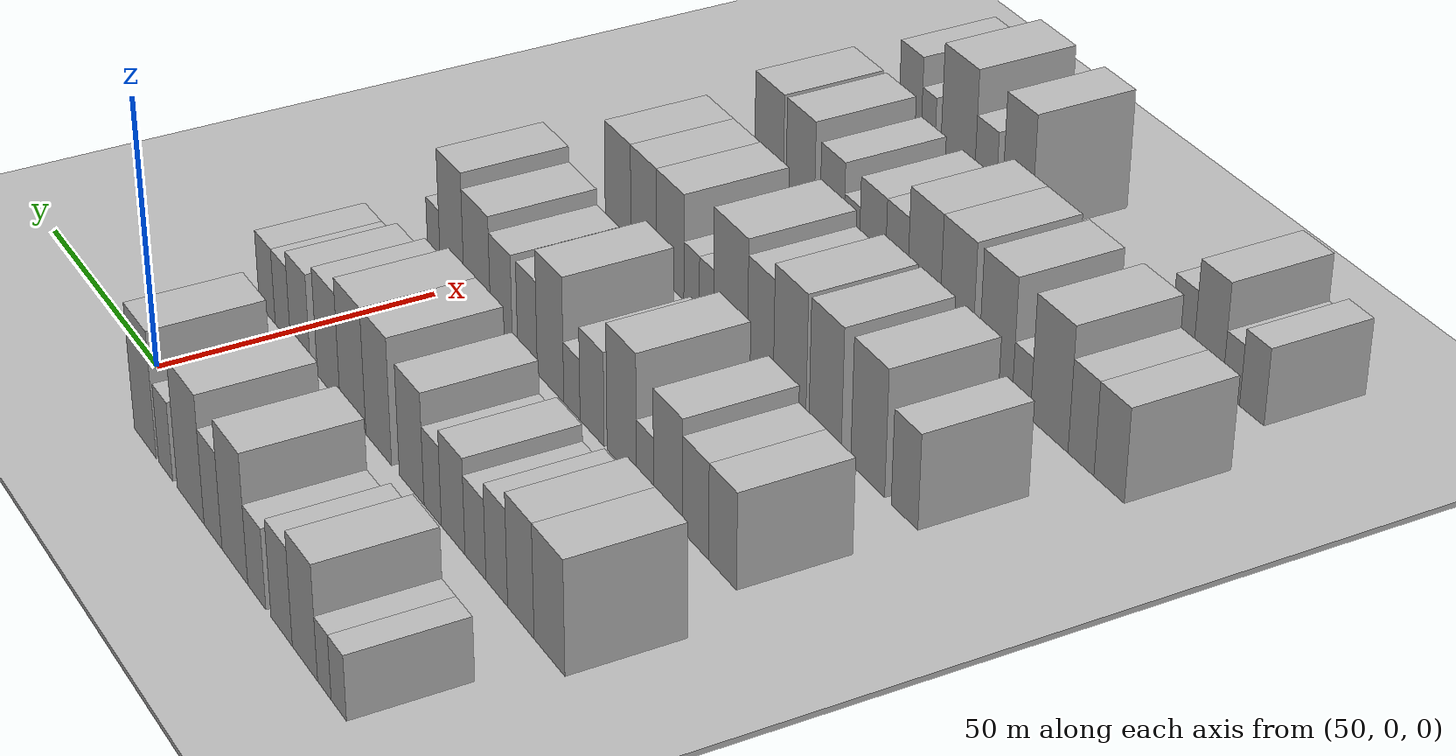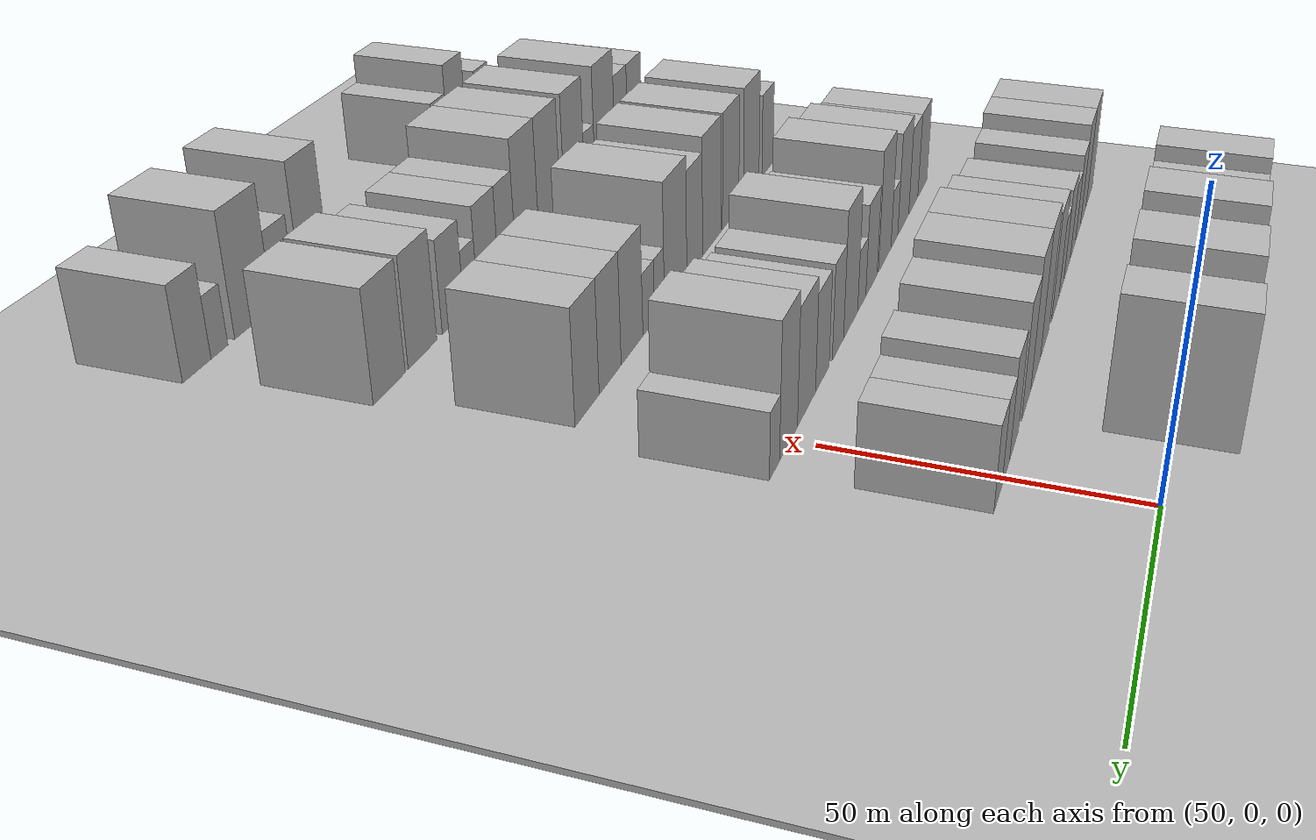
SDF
<sdf version="1.6">
 <world name="default">
  <include><name>ground_plane_1</name><uri>model://HANNAS_ground_plane</uri></include>
  <include>
   <name>ground_plane_2</name>
   <uri>model://HANNAS_ground_plane</uri>
   <pose>100 0 0  0 0 0</pose>
  </include>
  <model name="building_47">
   <static>1</static>
   <pose>50.0000 -99.2370 0 0.000000 0.000000 0.000000</pose>
   <link name="link">
    <pose>0 0 6.00 0 0 0</pose>
    <collision name="collision"><geometry><box><size>20.0000 5.5091 12.0000</size></box></geometry></collision>
    <visual name="visual">
     <cast_shadows>0</cast_shadows>
     <geometry><box><size>20.0000 5.5091 12.0000</size></box></geometry>
     <material>
      <script>
       <uri>model://HANNAS_wall/materials/scripts</uri>
       <uri>model://HANNAS_wall/materials/textures</uri>
       <name>vrc/HANNAS_wall</name>
      </script>
     </material>
    </visual>
   </link>
  </model>
  <model name="building_48">
   <static>1</static>
   <pose>50.0000 -94.0040 0 0.000000 0.000000 0.000000</pose>
   <link name="link">
    <pose>0 0 6.00 0 0 0</pose>
    <collision name="collision"><geometry><box><size>20.0000 4.9569 12.0000</size></box></geometry></collision>
    <visual name="visual">
     <cast_shadows>0</cast_shadows>
     <geometry><box><size>20.0000 4.9569 12.0000</size></box></geometry>
     <material>
      <script>
       <uri>model://HANNAS_wall/materials/scripts</uri>
       <uri>model://HANNAS_wall/materials/textures</uri>
       <name>vrc/HANNAS_wall</name>
      </script>
     </material>
    </visual>
   </link>
  </model>
  <model name="building_49">
   <static>1</static>
   <pose>50.0000 -86.7960 0 0.000000 0.000000 0.000000</pose>
   <link name="link">
    <pose>0 0 10.50 0 0 0</pose>
    <collision name="collision"><geometry><box><size>20.0000 9.4590 21.0000</size></box></geometry></collision>
    <visual name="visual">
     <cast_shadows>0</cast_shadows>
     <geometry><box><size>20.0000 9.4590 21.0000</size></box></geometry>
     <material>
      <script>
       <uri>model://HANNAS_wall/materials/scripts</uri>
       <uri>model://HANNAS_wall/materials/textures</uri>
       <name>vrc/HANNAS_wall</name>
      </script>
     </material>
    </visual>
   </link>
  </model>
  <model name="building_50">
   <static>1</static>
   <pose>50.0000 -77.9590 0 0.000000 0.000000 0.000000</pose>
   <link name="link">
    <pose>0 0 9.00 0 0 0</pose>
    <collision name="collision"><geometry><box><size>20.0000 8.2149 18.0000</size></box></geometry></collision>
    <visual name="visual">
     <cast_shadows>0</cast_shadows>
     <geometry><box><size>20.0000 8.2149 18.0000</size></box></geometry>
     <material>
      <script>
       <uri>model://HANNAS_wall/materials/scripts</uri>
       <uri>model://HANNAS_wall/materials/textures</uri>
       <name>vrc/HANNAS_wall</name>
      </script>
     </material>
    </visual>
   </link>
  </model>
  <model name="building_51">
   <static>1</static>
   <pose>50.0000 -68.3012 0 0.000000 0.000000 0.000000</pose>
   <link name="link">
    <pose>0 0 7.50 0 0 0</pose>
    <collision name="collision"><geometry><box><size>20.0000 7.1007 15.0000</size></box></geometry></collision>
    <visual name="visual">
     <cast_shadows>0</cast_shadows>
     <geometry><box><size>20.0000 7.1007 15.0000</size></box></geometry>
     <material>
      <script>
       <uri>model://HANNAS_wall/materials/scripts</uri>
       <uri>model://HANNAS_wall/materials/textures</uri>
       <name>vrc/HANNAS_wall</name>
      </script>
     </material>
    </visual>
   </link>
  </model>
  <model name="building_52">
   <static>1</static>
   <pose>50.0000 -59.5511 0 0.000000 0.000000 0.000000</pose>
   <link name="link">
    <pose>0 0 12.00 0 0 0</pose>
    <collision name="collision"><geometry><box><size>20.0000 10.3995 24.0000</size></box></geometry></collision>
    <visual name="visual">
     <cast_shadows>0</cast_shadows>
     <geometry><box><size>20.0000 10.3995 24.0000</size></box></geometry>
     <material>
      <script>
       <uri>model://HANNAS_wall/materials/scripts</uri>
       <uri>model://HANNAS_wall/materials/textures</uri>
       <name>vrc/HANNAS_wall</name>
      </script>
     </material>
    </visual>
   </link>
  </model>
  <model name="building_53">
   <static>1</static>
   <pose>50.0000 -50.6286 0 0.000000 0.000000 0.000000</pose>
   <link name="link">
    <pose>0 0 9.00 0 0 0</pose>
    <collision name="collision"><geometry><box><size>20.0000 7.4455 18.0000</size></box></geometry></collision>
    <visual name="visual">
     <cast_shadows>0</cast_shadows>
     <geometry><box><size>20.0000 7.4455 18.0000</size></box></geometry>
     <material>
      <script>
       <uri>model://HANNAS_wall/materials/scripts</uri>
       <uri>model://HANNAS_wall/materials/textures</uri>
       <name>vrc/HANNAS_wall</name>
      </script>
     </material>
    </visual>
   </link>
  </model>
  <model name="building_54">
   <static>1</static>
   <pose>50.0000 -41.2096 0 0.000000 0.000000 0.000000</pose>
   <link name="link">
    <pose>0 0 12.00 0 0 0</pose>
    <collision name="collision"><geometry><box><size>20.0000 11.3924 24.0000</size></box></geometry></collision>
    <visual name="visual">
     <cast_shadows>0</cast_shadows>
     <geometry><box><size>20.0000 11.3924 24.0000</size></box></geometry>
     <material>
      <script>
       <uri>model://HANNAS_wall/materials/scripts</uri>
       <uri>model://HANNAS_wall/materials/textures</uri>
       <name>vrc/HANNAS_wall</name>
      </script>
     </material>
    </visual>
   </link>
  </model>
  <model name="building_55">
   <static>1</static>
   <pose>50.0000 -30.4210 0 0.000000 0.000000 0.000000</pose>
   <link name="link">
    <pose>0 0 7.50 0 0 0</pose>
    <collision name="collision"><geometry><box><size>20.0000 6.1848 15.0000</size></box></geometry></collision>
    <visual name="visual">
     <cast_shadows>0</cast_shadows>
     <geometry><box><size>20.0000 6.1848 15.0000</size></box></geometry>
     <material>
      <script>
       <uri>model://HANNAS_wall/materials/scripts</uri>
       <uri>model://HANNAS_wall/materials/textures</uri>
       <name>vrc/HANNAS_wall</name>
      </script>
     </material>
    </visual>
   </link>
  </model>
  <model name="building_56">
   <static>1</static>
   <pose>50.0000 -21.4422 0 0.000000 0.000000 0.000000</pose>
   <link name="link">
    <pose>0 0 12.00 0 0 0</pose>
    <collision name="collision"><geometry><box><size>20.0000 9.7727 24.0000</size></box></geometry></collision>
    <visual name="visual">
     <cast_shadows>0</cast_shadows>
     <geometry><box><size>20.0000 9.7727 24.0000</size></box></geometry>
     <material>
      <script>
       <uri>model://HANNAS_wall/materials/scripts</uri>
       <uri>model://HANNAS_wall/materials/textures</uri>
       <name>vrc/HANNAS_wall</name>
      </script>
     </material>
    </visual>
   </link>
  </model>
  <model name="building_164">
   <static>1</static>
   <pose>82.0000 -101.8453 0 0.000000 0.000000 0.000000</pose>
   <link name="link">
    <pose>0 0 10.50 0 0 0</pose>
    <collision name="collision"><geometry><box><size>20.0000 10.2073 21.0000</size></box></geometry></collision>
    <visual name="visual">
     <cast_shadows>0</cast_shadows>
     <geometry><box><size>20.0000 10.2073 21.0000</size></box></geometry>
     <material>
      <script>
       <uri>model://HANNAS_wall/materials/scripts</uri>
       <uri>model://HANNAS_wall/materials/textures</uri>
       <name>vrc/HANNAS_wall</name>
      </script>
     </material>
    </visual>
   </link>
  </model>
  <model name="building_165">
   <static>1</static>
   <pose>82.0000 -92.2437 0 0.000000 0.000000 0.000000</pose>
   <link name="link">
    <pose>0 0 10.50 0 0 0</pose>
    <collision name="collision"><geometry><box><size>20.0000 8.9959 21.0000</size></box></geometry></collision>
    <visual name="visual">
     <cast_shadows>0</cast_shadows>
     <geometry><box><size>20.0000 8.9959 21.0000</size></box></geometry>
     <material>
      <script>
       <uri>model://HANNAS_wall/materials/scripts</uri>
       <uri>model://HANNAS_wall/materials/textures</uri>
       <name>vrc/HANNAS_wall</name>
      </script>
     </material>
    </visual>
   </link>
  </model>
  <model name="building_166">
   <static>1</static>
   <pose>82.0000 -83.9623 0 0.000000 0.000000 0.000000</pose>
   <link name="link">
    <pose>0 0 9.00 0 0 0</pose>
    <collision name="collision"><geometry><box><size>20.0000 7.5668 18.0000</size></box></geometry></collision>
    <visual name="visual">
     <cast_shadows>0</cast_shadows>
     <geometry><box><size>20.0000 7.5668 18.0000</size></box></geometry>
     <material>
      <script>
       <uri>model://HANNAS_wall/materials/scripts</uri>
       <uri>model://HANNAS_wall/materials/textures</uri>
       <name>vrc/HANNAS_wall</name>
      </script>
     </material>
    </visual>
   </link>
  </model>
  <model name="building_167">
   <static>1</static>
   <pose>82.0000 -76.4705 0 0.000000 0.000000 0.000000</pose>
   <link name="link">
    <pose>0 0 7.50 0 0 0</pose>
    <collision name="collision"><geometry><box><size>20.0000 7.4170 15.0000</size></box></geometry></collision>
    <visual name="visual">
     <cast_shadows>0</cast_shadows>
     <geometry><box><size>20.0000 7.4170 15.0000</size></box></geometry>
     <material>
      <script>
       <uri>model://HANNAS_wall/materials/scripts</uri>
       <uri>model://HANNAS_wall/materials/textures</uri>
       <name>vrc/HANNAS_wall</name>
      </script>
     </material>
    </visual>
   </link>
  </model>
  <model name="building_168">
   <static>1</static>
   <pose>82.0000 -68.4474 0 0.000000 0.000000 0.000000</pose>
   <link name="link">
    <pose>0 0 9.00 0 0 0</pose>
    <collision name="collision"><geometry><box><size>20.0000 8.6291 18.0000</size></box></geometry></collision>
    <visual name="visual">
     <cast_shadows>0</cast_shadows>
     <geometry><box><size>20.0000 8.6291 18.0000</size></box></geometry>
     <material>
      <script>
       <uri>model://HANNAS_wall/materials/scripts</uri>
       <uri>model://HANNAS_wall/materials/textures</uri>
       <name>vrc/HANNAS_wall</name>
      </script>
     </material>
    </visual>
   </link>
  </model>
  <model name="building_169">
   <static>1</static>
   <pose>82.0000 -60.9271 0 0.000000 0.000000 0.000000</pose>
   <link name="link">
    <pose>0 0 7.50 0 0 0</pose>
    <collision name="collision"><geometry><box><size>20.0000 6.4116 15.0000</size></box></geometry></collision>
    <visual name="visual">
     <cast_shadows>0</cast_shadows>
     <geometry><box><size>20.0000 6.4116 15.0000</size></box></geometry>
     <material>
      <script>
       <uri>model://HANNAS_wall/materials/scripts</uri>
       <uri>model://HANNAS_wall/materials/textures</uri>
       <name>vrc/HANNAS_wall</name>
      </script>
     </material>
    </visual>
   </link>
  </model>
  <model name="building_170">
   <static>1</static>
   <pose>82.0000 -53.0130 0 0.000000 0.000000 0.000000</pose>
   <link name="link">
    <pose>0 0 10.50 0 0 0</pose>
    <collision name="collision"><geometry><box><size>20.0000 9.4164 21.0000</size></box></geometry></collision>
    <visual name="visual">
     <cast_shadows>0</cast_shadows>
     <geometry><box><size>20.0000 9.4164 21.0000</size></box></geometry>
     <material>
      <script>
       <uri>model://HANNAS_wall/materials/scripts</uri>
       <uri>model://HANNAS_wall/materials/textures</uri>
       <name>vrc/HANNAS_wall</name>
      </script>
     </material>
    </visual>
   </link>
  </model>
  <model name="building_171">
   <static>1</static>
   <pose>82.0000 -40.2784 0 0.000000 0.000000 0.000000</pose>
   <link name="link">
    <pose>0 0 12.00 0 0 0</pose>
    <collision name="collision"><geometry><box><size>20.0000 10.0529 24.0000</size></box></geometry></collision>
    <visual name="visual">
     <cast_shadows>0</cast_shadows>
     <geometry><box><size>20.0000 10.0529 24.0000</size></box></geometry>
     <material>
      <script>
       <uri>model://HANNAS_wall/materials/scripts</uri>
       <uri>model://HANNAS_wall/materials/textures</uri>
       <name>vrc/HANNAS_wall</name>
      </script>
     </material>
    </visual>
   </link>
  </model>
  <model name="building_172">
   <static>1</static>
   <pose>82.0000 -30.0319 0 0.000000 0.000000 0.000000</pose>
   <link name="link">
    <pose>0 0 12.00 0 0 0</pose>
    <collision name="collision"><geometry><box><size>20.0000 10.4400 24.0000</size></box></geometry></collision>
    <visual name="visual">
     <cast_shadows>0</cast_shadows>
     <geometry><box><size>20.0000 10.4400 24.0000</size></box></geometry>
     <material>
      <script>
       <uri>model://HANNAS_wall/materials/scripts</uri>
       <uri>model://HANNAS_wall/materials/textures</uri>
       <name>vrc/HANNAS_wall</name>
      </script>
     </material>
    </visual>
   </link>
  </model>
  <model name="building_173">
   <static>1</static>
   <pose>82.0000 -20.1255 0 0.000000 0.000000 0.000000</pose>
   <link name="link">
    <pose>0 0 10.50 0 0 0</pose>
    <collision name="collision"><geometry><box><size>20.0000 9.3729 21.0000</size></box></geometry></collision>
    <visual name="visual">
     <cast_shadows>0</cast_shadows>
     <geometry><box><size>20.0000 9.3729 21.0000</size></box></geometry>
     <material>
      <script>
       <uri>model://HANNAS_wall/materials/scripts</uri>
       <uri>model://HANNAS_wall/materials/textures</uri>
       <name>vrc/HANNAS_wall</name>
      </script>
     </material>
    </visual>
   </link>
  </model>
  <model name="building_174">
   <static>1</static>
   <pose>82.0000 -8.2024 0 0.000000 0.000000 0.000000</pose>
   <link name="link">
    <pose>0 0 9.00 0 0 0</pose>
    <collision name="collision"><geometry><box><size>20.0000 8.4732 18.0000</size></box></geometry></collision>
    <visual name="visual">
     <cast_shadows>0</cast_shadows>
     <geometry><box><size>20.0000 8.4732 18.0000</size></box></geometry>
     <material>
      <script>
       <uri>model://HANNAS_wall/materials/scripts</uri>
       <uri>model://HANNAS_wall/materials/textures</uri>
       <name>vrc/HANNAS_wall</name>
      </script>
     </material>
    </visual>
   </link>
  </model>
  <model name="building_175">
   <static>1</static>
   <pose>82.0000 -0.6517 0 0.000000 0.000000 0.000000</pose>
   <link name="link">
    <pose>0 0 7.50 0 0 0</pose>
    <collision name="collision"><geometry><box><size>20.0000 6.6282 15.0000</size></box></geometry></collision>
    <visual name="visual">
     <cast_shadows>0</cast_shadows>
     <geometry><box><size>20.0000 6.6282 15.0000</size></box></geometry>
     <material>
      <script>
       <uri>model://HANNAS_wall/materials/scripts</uri>
       <uri>model://HANNAS_wall/materials/textures</uri>
       <name>vrc/HANNAS_wall</name>
      </script>
     </material>
    </visual>
   </link>
  </model>
  <model name="building_176">
   <static>1</static>
   <pose>82.0000 6.1698 0 0.000000 0.000000 0.000000</pose>
   <link name="link">
    <pose>0 0 7.50 0 0 0</pose>
    <collision name="collision"><geometry><box><size>20.0000 7.0147 15.0000</size></box></geometry></collision>
    <visual name="visual">
     <cast_shadows>0</cast_shadows>
     <geometry><box><size>20.0000 7.0147 15.0000</size></box></geometry>
     <material>
      <script>
       <uri>model://HANNAS_wall/materials/scripts</uri>
       <uri>model://HANNAS_wall/materials/textures</uri>
       <name>vrc/HANNAS_wall</name>
      </script>
     </material>
    </visual>
   </link>
  </model>
  <model name="building_283">
   <static>1</static>
   <pose>114.0000 -95.3579 0 0.000000 0.000000 0.000000</pose>
   <link name="link">
    <pose>0 0 9.00 0 0 0</pose>
    <collision name="collision"><geometry><box><size>20.0000 8.8075 18.0000</size></box></geometry></collision>
    <visual name="visual">
     <cast_shadows>0</cast_shadows>
     <geometry><box><size>20.0000 8.8075 18.0000</size></box></geometry>
     <material>
      <script>
       <uri>model://HANNAS_wall/materials/scripts</uri>
       <uri>model://HANNAS_wall/materials/textures</uri>
       <name>vrc/HANNAS_wall</name>
      </script>
     </material>
    </visual>
   </link>
  </model>
  <model name="building_284">
   <static>1</static>
   <pose>114.0000 -86.7526 0 0.000000 0.000000 0.000000</pose>
   <link name="link">
    <pose>0 0 9.00 0 0 0</pose>
    <collision name="collision"><geometry><box><size>20.0000 8.4030 18.0000</size></box></geometry></collision>
    <visual name="visual">
     <cast_shadows>0</cast_shadows>
     <geometry><box><size>20.0000 8.4030 18.0000</size></box></geometry>
     <material>
      <script>
       <uri>model://HANNAS_wall/materials/scripts</uri>
       <uri>model://HANNAS_wall/materials/textures</uri>
       <name>vrc/HANNAS_wall</name>
      </script>
     </material>
    </visual>
   </link>
  </model>
  <model name="building_285">
   <static>1</static>
   <pose>114.0000 -77.7031 0 0.000000 0.000000 0.000000</pose>
   <link name="link">
    <pose>0 0 10.50 0 0 0</pose>
    <collision name="collision"><geometry><box><size>20.0000 9.6959 21.0000</size></box></geometry></collision>
    <visual name="visual">
     <cast_shadows>0</cast_shadows>
     <geometry><box><size>20.0000 9.6959 21.0000</size></box></geometry>
     <material>
      <script>
       <uri>model://HANNAS_wall/materials/scripts</uri>
       <uri>model://HANNAS_wall/materials/textures</uri>
       <name>vrc/HANNAS_wall</name>
      </script>
     </material>
    </visual>
   </link>
  </model>
  <model name="building_286">
   <static>1</static>
   <pose>114.0000 -69.9713 0 0.000000 0.000000 0.000000</pose>
   <link name="link">
    <pose>0 0 6.00 0 0 0</pose>
    <collision name="collision"><geometry><box><size>20.0000 5.7677 12.0000</size></box></geometry></collision>
    <visual name="visual">
     <cast_shadows>0</cast_shadows>
     <geometry><box><size>20.0000 5.7677 12.0000</size></box></geometry>
     <material>
      <script>
       <uri>model://HANNAS_wall/materials/scripts</uri>
       <uri>model://HANNAS_wall/materials/textures</uri>
       <name>vrc/HANNAS_wall</name>
      </script>
     </material>
    </visual>
   </link>
  </model>
  <model name="building_287">
   <static>1</static>
   <pose>114.0000 -62.0086 0 0.000000 0.000000 0.000000</pose>
   <link name="link">
    <pose>0 0 12.00 0 0 0</pose>
    <collision name="collision"><geometry><box><size>20.0000 10.1578 24.0000</size></box></geometry></collision>
    <visual name="visual">
     <cast_shadows>0</cast_shadows>
     <geometry><box><size>20.0000 10.1578 24.0000</size></box></geometry>
     <material>
      <script>
       <uri>model://HANNAS_wall/materials/scripts</uri>
       <uri>model://HANNAS_wall/materials/textures</uri>
       <name>vrc/HANNAS_wall</name>
      </script>
     </material>
    </visual>
   </link>
  </model>
  <model name="building_288">
   <static>1</static>
   <pose>114.0000 -51.6359 0 0.000000 0.000000 0.000000</pose>
   <link name="link">
    <pose>0 0 9.00 0 0 0</pose>
    <collision name="collision"><geometry><box><size>20.0000 8.5876 18.0000</size></box></geometry></collision>
    <visual name="visual">
     <cast_shadows>0</cast_shadows>
     <geometry><box><size>20.0000 8.5876 18.0000</size></box></geometry>
     <material>
      <script>
       <uri>model://HANNAS_wall/materials/scripts</uri>
       <uri>model://HANNAS_wall/materials/textures</uri>
       <name>vrc/HANNAS_wall</name>
      </script>
     </material>
    </visual>
   </link>
  </model>
  <model name="building_289">
   <static>1</static>
   <pose>114.0000 -44.3966 0 0.000000 0.000000 0.000000</pose>
   <link name="link">
    <pose>0 0 6.00 0 0 0</pose>
    <collision name="collision"><geometry><box><size>20.0000 5.8909 12.0000</size></box></geometry></collision>
    <visual name="visual">
     <cast_shadows>0</cast_shadows>
     <geometry><box><size>20.0000 5.8909 12.0000</size></box></geometry>
     <material>
      <script>
       <uri>model://HANNAS_wall/materials/scripts</uri>
       <uri>model://HANNAS_wall/materials/textures</uri>
       <name>vrc/HANNAS_wall</name>
      </script>
     </material>
    </visual>
   </link>
  </model>
  <model name="building_290">
   <static>1</static>
   <pose>114.0000 -36.5406 0 0.000000 0.000000 0.000000</pose>
   <link name="link">
    <pose>0 0 12.00 0 0 0</pose>
    <collision name="collision"><geometry><box><size>20.0000 9.8210 24.0000</size></box></geometry></collision>
    <visual name="visual">
     <cast_shadows>0</cast_shadows>
     <geometry><box><size>20.0000 9.8210 24.0000</size></box></geometry>
     <material>
      <script>
       <uri>model://HANNAS_wall/materials/scripts</uri>
       <uri>model://HANNAS_wall/materials/textures</uri>
       <name>vrc/HANNAS_wall</name>
      </script>
     </material>
    </visual>
   </link>
  </model>
  <model name="building_291">
   <static>1</static>
   <pose>114.0000 -27.9179 0 0.000000 0.000000 0.000000</pose>
   <link name="link">
    <pose>0 0 9.00 0 0 0</pose>
    <collision name="collision"><geometry><box><size>20.0000 7.4245 18.0000</size></box></geometry></collision>
    <visual name="visual">
     <cast_shadows>0</cast_shadows>
     <geometry><box><size>20.0000 7.4245 18.0000</size></box></geometry>
     <material>
      <script>
       <uri>model://HANNAS_wall/materials/scripts</uri>
       <uri>model://HANNAS_wall/materials/textures</uri>
       <name>vrc/HANNAS_wall</name>
      </script>
     </material>
    </visual>
   </link>
  </model>
  <model name="building_292">
   <static>1</static>
   <pose>114.0000 -17.9886 0 0.000000 0.000000 0.000000</pose>
   <link name="link">
    <pose>0 0 9.00 0 0 0</pose>
    <collision name="collision"><geometry><box><size>20.0000 8.4341 18.0000</size></box></geometry></collision>
    <visual name="visual">
     <cast_shadows>0</cast_shadows>
     <geometry><box><size>20.0000 8.4341 18.0000</size></box></geometry>
     <material>
      <script>
       <uri>model://HANNAS_wall/materials/scripts</uri>
       <uri>model://HANNAS_wall/materials/textures</uri>
       <name>vrc/HANNAS_wall</name>
      </script>
     </material>
    </visual>
   </link>
  </model>
  <model name="building_293">
   <static>1</static>
   <pose>114.0000 -8.5224 0 0.000000 0.000000 0.000000</pose>
   <link name="link">
    <pose>0 0 10.50 0 0 0</pose>
    <collision name="collision"><geometry><box><size>20.0000 10.4983 21.0000</size></box></geometry></collision>
    <visual name="visual">
     <cast_shadows>0</cast_shadows>
     <geometry><box><size>20.0000 10.4983 21.0000</size></box></geometry>
     <material>
      <script>
       <uri>model://HANNAS_wall/materials/scripts</uri>
       <uri>model://HANNAS_wall/materials/textures</uri>
       <name>vrc/HANNAS_wall</name>
      </script>
     </material>
    </visual>
   </link>
  </model>
  <model name="building_294">
   <static>1</static>
   <pose>114.0000 1.5944 0 0.000000 0.000000 0.000000</pose>
   <link name="link">
    <pose>0 0 12.00 0 0 0</pose>
    <collision name="collision"><geometry><box><size>20.0000 9.7352 24.0000</size></box></geometry></collision>
    <visual name="visual">
     <cast_shadows>0</cast_shadows>
     <geometry><box><size>20.0000 9.7352 24.0000</size></box></geometry>
     <material>
      <script>
       <uri>model://HANNAS_wall/materials/scripts</uri>
       <uri>model://HANNAS_wall/materials/textures</uri>
       <name>vrc/HANNAS_wall</name>
      </script>
     </material>
    </visual>
   </link>
  </model>
  <model name="building_295">
   <static>1</static>
   <pose>114.0000 9.0719 0 0.000000 0.000000 0.000000</pose>
   <link name="link">
    <pose>0 0 6.00 0 0 0</pose>
    <collision name="collision"><geometry><box><size>20.0000 5.2199 12.0000</size></box></geometry></collision>
    <visual name="visual">
     <cast_shadows>0</cast_shadows>
     <geometry><box><size>20.0000 5.2199 12.0000</size></box></geometry>
     <material>
      <script>
       <uri>model://HANNAS_wall/materials/scripts</uri>
       <uri>model://HANNAS_wall/materials/textures</uri>
       <name>vrc/HANNAS_wall</name>
      </script>
     </material>
    </visual>
   </link>
  </model>
  <model name="building_399">
   <static>1</static>
   <pose>146.0000 -94.8661 0 0.000000 0.000000 0.000000</pose>
   <link name="link">
    <pose>0 0 9.00 0 0 0</pose>
    <collision name="collision"><geometry><box><size>20.0000 7.9829 18.0000</size></box></geometry></collision>
    <visual name="visual">
     <cast_shadows>0</cast_shadows>
     <geometry><box><size>20.0000 7.9829 18.0000</size></box></geometry>
     <material>
      <script>
       <uri>model://HANNAS_wall/materials/scripts</uri>
       <uri>model://HANNAS_wall/materials/textures</uri>
       <name>vrc/HANNAS_wall</name>
      </script>
     </material>
    </visual>
   </link>
  </model>
  <model name="building_400">
   <static>1</static>
   <pose>146.0000 -83.6267 0 0.000000 0.000000 0.000000</pose>
   <link name="link">
    <pose>0 0 12.00 0 0 0</pose>
    <collision name="collision"><geometry><box><size>20.0000 10.4960 24.0000</size></box></geometry></collision>
    <visual name="visual">
     <cast_shadows>0</cast_shadows>
     <geometry><box><size>20.0000 10.4960 24.0000</size></box></geometry>
     <material>
      <script>
       <uri>model://HANNAS_wall/materials/scripts</uri>
       <uri>model://HANNAS_wall/materials/textures</uri>
       <name>vrc/HANNAS_wall</name>
      </script>
     </material>
    </visual>
   </link>
  </model>
  <model name="building_401">
   <static>1</static>
   <pose>146.0000 -70.2196 0 0.000000 0.000000 0.000000</pose>
   <link name="link">
    <pose>0 0 12.00 0 0 0</pose>
    <collision name="collision"><geometry><box><size>20.0000 10.3182 24.0000</size></box></geometry></collision>
    <visual name="visual">
     <cast_shadows>0</cast_shadows>
     <geometry><box><size>20.0000 10.3182 24.0000</size></box></geometry>
     <material>
      <script>
       <uri>model://HANNAS_wall/materials/scripts</uri>
       <uri>model://HANNAS_wall/materials/textures</uri>
       <name>vrc/HANNAS_wall</name>
      </script>
     </material>
    </visual>
   </link>
  </model>
  <model name="building_402">
   <static>1</static>
   <pose>146.0000 -58.6877 0 0.000000 0.000000 0.000000</pose>
   <link name="link">
    <pose>0 0 12.00 0 0 0</pose>
    <collision name="collision"><geometry><box><size>20.0000 10.7457 24.0000</size></box></geometry></collision>
    <visual name="visual">
     <cast_shadows>0</cast_shadows>
     <geometry><box><size>20.0000 10.7457 24.0000</size></box></geometry>
     <material>
      <script>
       <uri>model://HANNAS_wall/materials/scripts</uri>
       <uri>model://HANNAS_wall/materials/textures</uri>
       <name>vrc/HANNAS_wall</name>
      </script>
     </material>
    </visual>
   </link>
  </model>
  <model name="building_403">
   <static>1</static>
   <pose>146.0000 -48.9366 0 0.000000 0.000000 0.000000</pose>
   <link name="link">
    <pose>0 0 10.50 0 0 0</pose>
    <collision name="collision"><geometry><box><size>20.0000 8.7564 21.0000</size></box></geometry></collision>
    <visual name="visual">
     <cast_shadows>0</cast_shadows>
     <geometry><box><size>20.0000 8.7564 21.0000</size></box></geometry>
     <material>
      <script>
       <uri>model://HANNAS_wall/materials/scripts</uri>
       <uri>model://HANNAS_wall/materials/textures</uri>
       <name>vrc/HANNAS_wall</name>
      </script>
     </material>
    </visual>
   </link>
  </model>
  <model name="building_404">
   <static>1</static>
   <pose>146.0000 -38.6674 0 0.000000 0.000000 0.000000</pose>
   <link name="link">
    <pose>0 0 12.00 0 0 0</pose>
    <collision name="collision"><geometry><box><size>20.0000 11.7821 24.0000</size></box></geometry></collision>
    <visual name="visual">
     <cast_shadows>0</cast_shadows>
     <geometry><box><size>20.0000 11.7821 24.0000</size></box></geometry>
     <material>
      <script>
       <uri>model://HANNAS_wall/materials/scripts</uri>
       <uri>model://HANNAS_wall/materials/textures</uri>
       <name>vrc/HANNAS_wall</name>
      </script>
     </material>
    </visual>
   </link>
  </model>
  <model name="building_405">
   <static>1</static>
   <pose>146.0000 -30.2778 0 0.000000 0.000000 0.000000</pose>
   <link name="link">
    <pose>0 0 6.00 0 0 0</pose>
    <collision name="collision"><geometry><box><size>20.0000 4.9971 12.0000</size></box></geometry></collision>
    <visual name="visual">
     <cast_shadows>0</cast_shadows>
     <geometry><box><size>20.0000 4.9971 12.0000</size></box></geometry>
     <material>
      <script>
       <uri>model://HANNAS_wall/materials/scripts</uri>
       <uri>model://HANNAS_wall/materials/textures</uri>
       <name>vrc/HANNAS_wall</name>
      </script>
     </material>
    </visual>
   </link>
  </model>
  <model name="building_406">
   <static>1</static>
   <pose>146.0000 -24.9912 0 0.000000 0.000000 0.000000</pose>
   <link name="link">
    <pose>0 0 6.00 0 0 0</pose>
    <collision name="collision"><geometry><box><size>20.0000 5.5760 12.0000</size></box></geometry></collision>
    <visual name="visual">
     <cast_shadows>0</cast_shadows>
     <geometry><box><size>20.0000 5.5760 12.0000</size></box></geometry>
     <material>
      <script>
       <uri>model://HANNAS_wall/materials/scripts</uri>
       <uri>model://HANNAS_wall/materials/textures</uri>
       <name>vrc/HANNAS_wall</name>
      </script>
     </material>
    </visual>
   </link>
  </model>
  <model name="building_407">
   <static>1</static>
   <pose>146.0000 -17.1772 0 0.000000 0.000000 0.000000</pose>
   <link name="link">
    <pose>0 0 10.50 0 0 0</pose>
    <collision name="collision"><geometry><box><size>20.0000 10.0519 21.0000</size></box></geometry></collision>
    <visual name="visual">
     <cast_shadows>0</cast_shadows>
     <geometry><box><size>20.0000 10.0519 21.0000</size></box></geometry>
     <material>
      <script>
       <uri>model://HANNAS_wall/materials/scripts</uri>
       <uri>model://HANNAS_wall/materials/textures</uri>
       <name>vrc/HANNAS_wall</name>
      </script>
     </material>
    </visual>
   </link>
  </model>
  <model name="building_408">
   <static>1</static>
   <pose>146.0000 -7.3857 0 0.000000 0.000000 0.000000</pose>
   <link name="link">
    <pose>0 0 10.50 0 0 0</pose>
    <collision name="collision"><geometry><box><size>20.0000 9.5311 21.0000</size></box></geometry></collision>
    <visual name="visual">
     <cast_shadows>0</cast_shadows>
     <geometry><box><size>20.0000 9.5311 21.0000</size></box></geometry>
     <material>
      <script>
       <uri>model://HANNAS_wall/materials/scripts</uri>
       <uri>model://HANNAS_wall/materials/textures</uri>
       <name>vrc/HANNAS_wall</name>
      </script>
     </material>
    </visual>
   </link>
  </model>
  <model name="building_409">
   <static>1</static>
   <pose>146.0000 2.3043 0 0.000000 0.000000 0.000000</pose>
   <link name="link">
    <pose>0 0 10.50 0 0 0</pose>
    <collision name="collision"><geometry><box><size>20.0000 9.8489 21.0000</size></box></geometry></collision>
    <visual name="visual">
     <cast_shadows>0</cast_shadows>
     <geometry><box><size>20.0000 9.8489 21.0000</size></box></geometry>
     <material>
      <script>
       <uri>model://HANNAS_wall/materials/scripts</uri>
       <uri>model://HANNAS_wall/materials/textures</uri>
       <name>vrc/HANNAS_wall</name>
      </script>
     </material>
    </visual>
   </link>
  </model>
  <model name="building_514">
   <static>1</static>
   <pose>178.0000 -103.1503 0 0.000000 0.000000 0.000000</pose>
   <link name="link">
    <pose>0 0 9.00 0 0 0</pose>
    <collision name="collision"><geometry><box><size>20.0000 8.4988 18.0000</size></box></geometry></collision>
    <visual name="visual">
     <cast_shadows>0</cast_shadows>
     <geometry><box><size>20.0000 8.4988 18.0000</size></box></geometry>
     <material>
      <script>
       <uri>model://HANNAS_wall/materials/scripts</uri>
       <uri>model://HANNAS_wall/materials/textures</uri>
       <name>vrc/HANNAS_wall</name>
      </script>
     </material>
    </visual>
   </link>
  </model>
  <model name="building_515">
   <static>1</static>
   <pose>178.0000 -95.1873 0 0.000000 0.000000 0.000000</pose>
   <link name="link">
    <pose>0 0 9.00 0 0 0</pose>
    <collision name="collision"><geometry><box><size>20.0000 7.4273 18.0000</size></box></geometry></collision>
    <visual name="visual">
     <cast_shadows>0</cast_shadows>
     <geometry><box><size>20.0000 7.4273 18.0000</size></box></geometry>
     <material>
      <script>
       <uri>model://HANNAS_wall/materials/scripts</uri>
       <uri>model://HANNAS_wall/materials/textures</uri>
       <name>vrc/HANNAS_wall</name>
      </script>
     </material>
    </visual>
   </link>
  </model>
  <model name="building_516">
   <static>1</static>
   <pose>178.0000 -85.9439 0 0.000000 0.000000 0.000000</pose>
   <link name="link">
    <pose>0 0 12.00 0 0 0</pose>
    <collision name="collision"><geometry><box><size>20.0000 11.0594 24.0000</size></box></geometry></collision>
    <visual name="visual">
     <cast_shadows>0</cast_shadows>
     <geometry><box><size>20.0000 11.0594 24.0000</size></box></geometry>
     <material>
      <script>
       <uri>model://HANNAS_wall/materials/scripts</uri>
       <uri>model://HANNAS_wall/materials/textures</uri>
       <name>vrc/HANNAS_wall</name>
      </script>
     </material>
    </visual>
   </link>
  </model>
  <model name="building_517">
   <static>1</static>
   <pose>178.0000 -77.6784 0 0.000000 0.000000 0.000000</pose>
   <link name="link">
    <pose>0 0 6.00 0 0 0</pose>
    <collision name="collision"><geometry><box><size>20.0000 5.4716 12.0000</size></box></geometry></collision>
    <visual name="visual">
     <cast_shadows>0</cast_shadows>
     <geometry><box><size>20.0000 5.4716 12.0000</size></box></geometry>
     <material>
      <script>
       <uri>model://HANNAS_wall/materials/scripts</uri>
       <uri>model://HANNAS_wall/materials/textures</uri>
       <name>vrc/HANNAS_wall</name>
      </script>
     </material>
    </visual>
   </link>
  </model>
  <model name="building_518">
   <static>1</static>
   <pose>178.0000 -69.7945 0 0.000000 0.000000 0.000000</pose>
   <link name="link">
    <pose>0 0 12.00 0 0 0</pose>
    <collision name="collision"><geometry><box><size>20.0000 10.2962 24.0000</size></box></geometry></collision>
    <visual name="visual">
     <cast_shadows>0</cast_shadows>
     <geometry><box><size>20.0000 10.2962 24.0000</size></box></geometry>
     <material>
      <script>
       <uri>model://HANNAS_wall/materials/scripts</uri>
       <uri>model://HANNAS_wall/materials/textures</uri>
       <name>vrc/HANNAS_wall</name>
      </script>
     </material>
    </visual>
   </link>
  </model>
  <model name="building_519">
   <static>1</static>
   <pose>178.0000 -57.4530 0 0.000000 0.000000 0.000000</pose>
   <link name="link">
    <pose>0 0 12.00 0 0 0</pose>
    <collision name="collision"><geometry><box><size>20.0000 10.3868 24.0000</size></box></geometry></collision>
    <visual name="visual">
     <cast_shadows>0</cast_shadows>
     <geometry><box><size>20.0000 10.3868 24.0000</size></box></geometry>
     <material>
      <script>
       <uri>model://HANNAS_wall/materials/scripts</uri>
       <uri>model://HANNAS_wall/materials/textures</uri>
       <name>vrc/HANNAS_wall</name>
      </script>
     </material>
    </visual>
   </link>
  </model>
  <model name="building_520">
   <static>1</static>
   <pose>178.0000 -47.0372 0 0.000000 0.000000 0.000000</pose>
   <link name="link">
    <pose>0 0 12.00 0 0 0</pose>
    <collision name="collision"><geometry><box><size>20.0000 10.4448 24.0000</size></box></geometry></collision>
    <visual name="visual">
     <cast_shadows>0</cast_shadows>
     <geometry><box><size>20.0000 10.4448 24.0000</size></box></geometry>
     <material>
      <script>
       <uri>model://HANNAS_wall/materials/scripts</uri>
       <uri>model://HANNAS_wall/materials/textures</uri>
       <name>vrc/HANNAS_wall</name>
      </script>
     </material>
    </visual>
   </link>
  </model>
  <model name="building_521">
   <static>1</static>
   <pose>178.0000 -38.1803 0 0.000000 0.000000 0.000000</pose>
   <link name="link">
    <pose>0 0 9.00 0 0 0</pose>
    <collision name="collision"><geometry><box><size>20.0000 7.2690 18.0000</size></box></geometry></collision>
    <visual name="visual">
     <cast_shadows>0</cast_shadows>
     <geometry><box><size>20.0000 7.2690 18.0000</size></box></geometry>
     <material>
      <script>
       <uri>model://HANNAS_wall/materials/scripts</uri>
       <uri>model://HANNAS_wall/materials/textures</uri>
       <name>vrc/HANNAS_wall</name>
      </script>
     </material>
    </visual>
   </link>
  </model>
  <model name="building_522">
   <static>1</static>
   <pose>178.0000 -30.1958 0 0.000000 0.000000 0.000000</pose>
   <link name="link">
    <pose>0 0 9.00 0 0 0</pose>
    <collision name="collision"><geometry><box><size>20.0000 8.6998 18.0000</size></box></geometry></collision>
    <visual name="visual">
     <cast_shadows>0</cast_shadows>
     <geometry><box><size>20.0000 8.6998 18.0000</size></box></geometry>
     <material>
      <script>
       <uri>model://HANNAS_wall/materials/scripts</uri>
       <uri>model://HANNAS_wall/materials/textures</uri>
       <name>vrc/HANNAS_wall</name>
      </script>
     </material>
    </visual>
   </link>
  </model>
  <model name="building_523">
   <static>1</static>
   <pose>178.0000 -23.1868 0 0.000000 0.000000 0.000000</pose>
   <link name="link">
    <pose>0 0 6.00 0 0 0</pose>
    <collision name="collision"><geometry><box><size>20.0000 5.3182 12.0000</size></box></geometry></collision>
    <visual name="visual">
     <cast_shadows>0</cast_shadows>
     <geometry><box><size>20.0000 5.3182 12.0000</size></box></geometry>
     <material>
      <script>
       <uri>model://HANNAS_wall/materials/scripts</uri>
       <uri>model://HANNAS_wall/materials/textures</uri>
       <name>vrc/HANNAS_wall</name>
      </script>
     </material>
    </visual>
   </link>
  </model>
  <model name="building_524">
   <static>1</static>
   <pose>178.0000 -16.3966 0 0.000000 0.000000 0.000000</pose>
   <link name="link">
    <pose>0 0 9.00 0 0 0</pose>
    <collision name="collision"><geometry><box><size>20.0000 8.2622 18.0000</size></box></geometry></collision>
    <visual name="visual">
     <cast_shadows>0</cast_shadows>
     <geometry><box><size>20.0000 8.2622 18.0000</size></box></geometry>
     <material>
      <script>
       <uri>model://HANNAS_wall/materials/scripts</uri>
       <uri>model://HANNAS_wall/materials/textures</uri>
       <name>vrc/HANNAS_wall</name>
      </script>
     </material>
    </visual>
   </link>
  </model>
  <model name="building_525">
   <static>1</static>
   <pose>178.0000 -5.2057 0 0.000000 0.000000 0.000000</pose>
   <link name="link">
    <pose>0 0 10.50 0 0 0</pose>
    <collision name="collision"><geometry><box><size>20.0000 10.1196 21.0000</size></box></geometry></collision>
    <visual name="visual">
     <cast_shadows>0</cast_shadows>
     <geometry><box><size>20.0000 10.1196 21.0000</size></box></geometry>
     <material>
      <script>
       <uri>model://HANNAS_wall/materials/scripts</uri>
       <uri>model://HANNAS_wall/materials/textures</uri>
       <name>vrc/HANNAS_wall</name>
      </script>
     </material>
    </visual>
   </link>
  </model>
  <model name="building_526">
   <static>1</static>
   <pose>178.0000 6.0852 0 0.000000 0.000000 0.000000</pose>
   <link name="link">
    <pose>0 0 10.50 0 0 0</pose>
    <collision name="collision"><geometry><box><size>20.0000 10.4622 21.0000</size></box></geometry></collision>
    <visual name="visual">
     <cast_shadows>0</cast_shadows>
     <geometry><box><size>20.0000 10.4622 21.0000</size></box></geometry>
     <material>
      <script>
       <uri>model://HANNAS_wall/materials/scripts</uri>
       <uri>model://HANNAS_wall/materials/textures</uri>
       <name>vrc/HANNAS_wall</name>
      </script>
     </material>
    </visual>
   </link>
  </model>
  <model name="building_635">
   <static>1</static>
   <pose>210.0000 -96.0549 0 0.000000 0.000000 0.000000</pose>
   <link name="link">
    <pose>0 0 7.50 0 0 0</pose>
    <collision name="collision"><geometry><box><size>20.0000 6.7191 15.0000</size></box></geometry></collision>
    <visual name="visual">
     <cast_shadows>0</cast_shadows>
     <geometry><box><size>20.0000 6.7191 15.0000</size></box></geometry>
     <material>
      <script>
       <uri>model://HANNAS_wall/materials/scripts</uri>
       <uri>model://HANNAS_wall/materials/textures</uri>
       <name>vrc/HANNAS_wall</name>
      </script>
     </material>
    </visual>
   </link>
  </model>
  <model name="building_636">
   <static>1</static>
   <pose>210.0000 -90.2757 0 0.000000 0.000000 0.000000</pose>
   <link name="link">
    <pose>0 0 6.00 0 0 0</pose>
    <collision name="collision"><geometry><box><size>20.0000 4.8393 12.0000</size></box></geometry></collision>
    <visual name="visual">
     <cast_shadows>0</cast_shadows>
     <geometry><box><size>20.0000 4.8393 12.0000</size></box></geometry>
     <material>
      <script>
       <uri>model://HANNAS_wall/materials/scripts</uri>
       <uri>model://HANNAS_wall/materials/textures</uri>
       <name>vrc/HANNAS_wall</name>
      </script>
     </material>
    </visual>
   </link>
  </model>
  <model name="building_637">
   <static>1</static>
   <pose>210.0000 -83.6419 0 0.000000 0.000000 0.000000</pose>
   <link name="link">
    <pose>0 0 10.50 0 0 0</pose>
    <collision name="collision"><geometry><box><size>20.0000 8.4283 21.0000</size></box></geometry></collision>
    <visual name="visual">
     <cast_shadows>0</cast_shadows>
     <geometry><box><size>20.0000 8.4283 21.0000</size></box></geometry>
     <material>
      <script>
       <uri>model://HANNAS_wall/materials/scripts</uri>
       <uri>model://HANNAS_wall/materials/textures</uri>
       <name>vrc/HANNAS_wall</name>
      </script>
     </material>
    </visual>
   </link>
  </model>
  <model name="building_638">
   <static>1</static>
   <pose>210.0000 -76.2606 0 0.000000 0.000000 0.000000</pose>
   <link name="link">
    <pose>0 0 7.50 0 0 0</pose>
    <collision name="collision"><geometry><box><size>20.0000 6.3342 15.0000</size></box></geometry></collision>
    <visual name="visual">
     <cast_shadows>0</cast_shadows>
     <geometry><box><size>20.0000 6.3342 15.0000</size></box></geometry>
     <material>
      <script>
       <uri>model://HANNAS_wall/materials/scripts</uri>
       <uri>model://HANNAS_wall/materials/textures</uri>
       <name>vrc/HANNAS_wall</name>
      </script>
     </material>
    </visual>
   </link>
  </model>
  <model name="building_639">
   <static>1</static>
   <pose>210.0000 -25.6306 0 0.000000 0.000000 0.000000</pose>
   <link name="link">
    <pose>0 0 12.00 0 0 0</pose>
    <collision name="collision"><geometry><box><size>20.0000 9.6420 24.0000</size></box></geometry></collision>
    <visual name="visual">
     <cast_shadows>0</cast_shadows>
     <geometry><box><size>20.0000 9.6420 24.0000</size></box></geometry>
     <material>
      <script>
       <uri>model://HANNAS_wall/materials/scripts</uri>
       <uri>model://HANNAS_wall/materials/textures</uri>
       <name>vrc/HANNAS_wall</name>
      </script>
     </material>
    </visual>
   </link>
  </model>
  <model name="building_640">
   <static>1</static>
   <pose>210.0000 -15.2081 0 0.000000 0.000000 0.000000</pose>
   <link name="link">
    <pose>0 0 7.50 0 0 0</pose>
    <collision name="collision"><geometry><box><size>20.0000 7.2031 15.0000</size></box></geometry></collision>
    <visual name="visual">
     <cast_shadows>0</cast_shadows>
     <geometry><box><size>20.0000 7.2031 15.0000</size></box></geometry>
     <material>
      <script>
       <uri>model://HANNAS_wall/materials/scripts</uri>
       <uri>model://HANNAS_wall/materials/textures</uri>
       <name>vrc/HANNAS_wall</name>
      </script>
     </material>
    </visual>
   </link>
  </model>
  <model name="building_641">
   <static>1</static>
   <pose>210.0000 -5.8228 0 0.000000 0.000000 0.000000</pose>
   <link name="link">
    <pose>0 0 12.00 0 0 0</pose>
    <collision name="collision"><geometry><box><size>20.0000 11.5675 24.0000</size></box></geometry></collision>
    <visual name="visual">
     <cast_shadows>0</cast_shadows>
     <geometry><box><size>20.0000 11.5675 24.0000</size></box></geometry>
     <material>
      <script>
       <uri>model://HANNAS_wall/materials/scripts</uri>
       <uri>model://HANNAS_wall/materials/textures</uri>
       <name>vrc/HANNAS_wall</name>
      </script>
     </material>
    </visual>
   </link>
  </model>
  <model name="building_642">
   <static>1</static>
   <pose>210.0000 4.3948 0 0.000000 0.000000 0.000000</pose>
   <link name="link">
    <pose>0 0 6.00 0 0 0</pose>
    <collision name="collision"><geometry><box><size>20.0000 4.8676 12.0000</size></box></geometry></collision>
    <visual name="visual">
     <cast_shadows>0</cast_shadows>
     <geometry><box><size>20.0000 4.8676 12.0000</size></box></geometry>
     <material>
      <script>
       <uri>model://HANNAS_wall/materials/scripts</uri>
       <uri>model://HANNAS_wall/materials/textures</uri>
       <name>vrc/HANNAS_wall</name>
      </script>
     </material>
    </visual>
   </link>
  </model>
  <model name="building_643">
   <static>1</static>
   <pose>210.0000 10.7773 0 0.000000 0.000000 0.000000</pose>
   <link name="link">
    <pose>0 0 9.00 0 0 0</pose>
    <collision name="collision"><geometry><box><size>20.0000 7.8975 18.0000</size></box></geometry></collision>
    <visual name="visual">
     <cast_shadows>0</cast_shadows>
     <geometry><box><size>20.0000 7.8975 18.0000</size></box></geometry>
     <material>
      <script>
       <uri>model://HANNAS_wall/materials/scripts</uri>
       <uri>model://HANNAS_wall/materials/textures</uri>
       <name>vrc/HANNAS_wall</name>
      </script>
     </material>
    </visual>
   </link>
  </model>
 </world>
</sdf>
